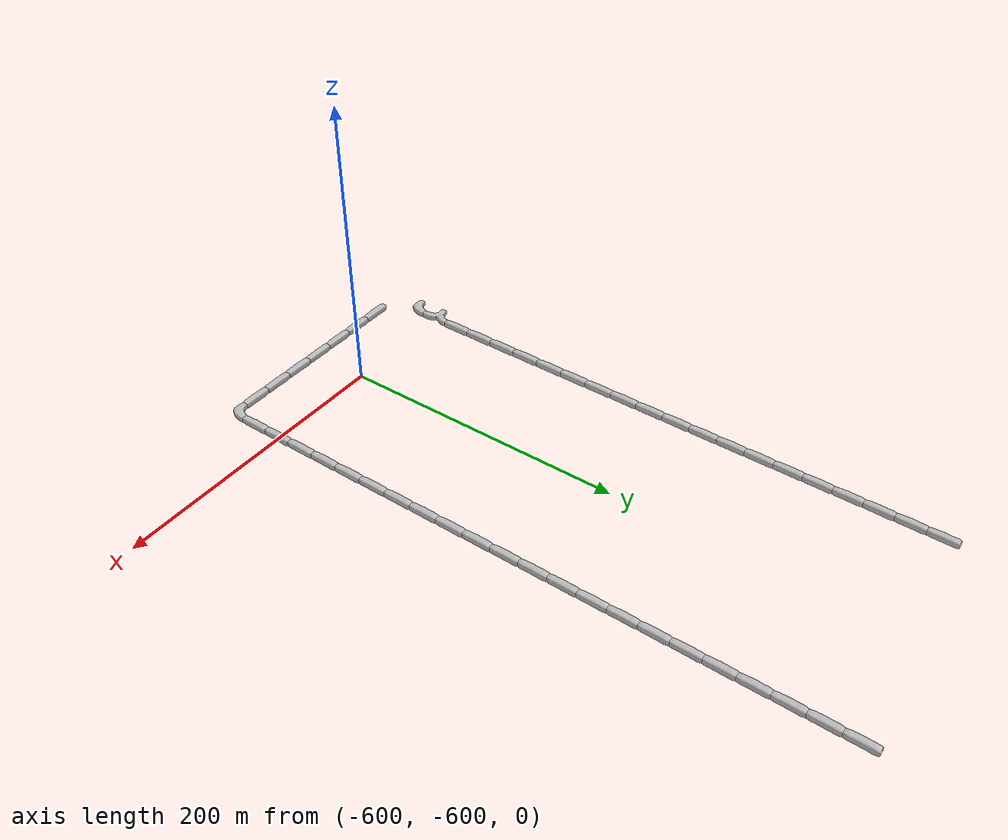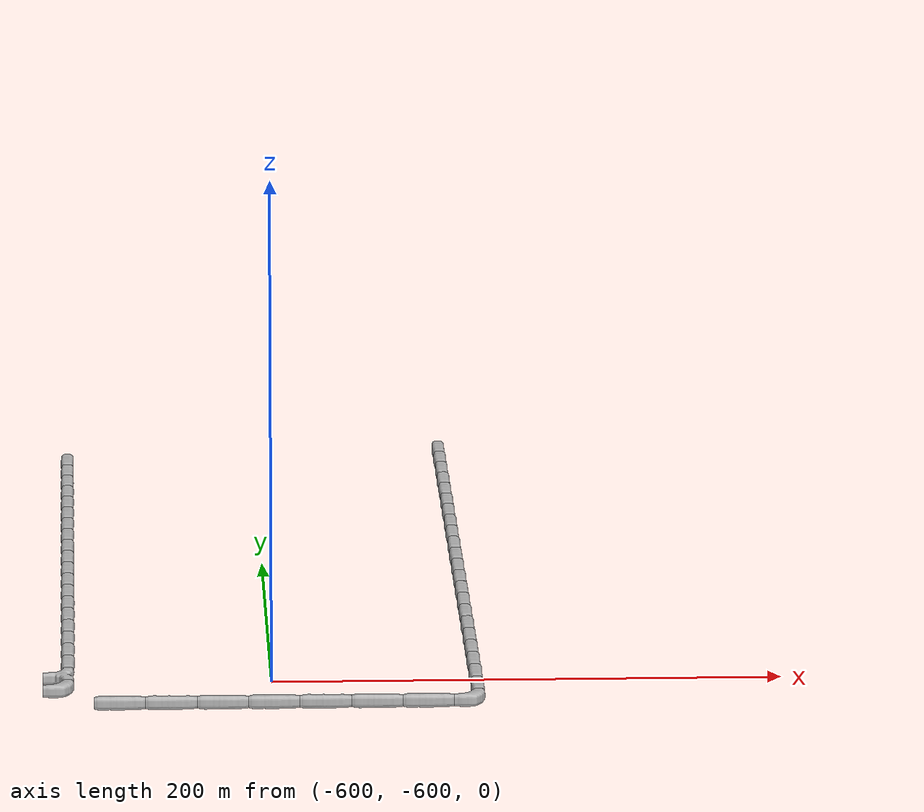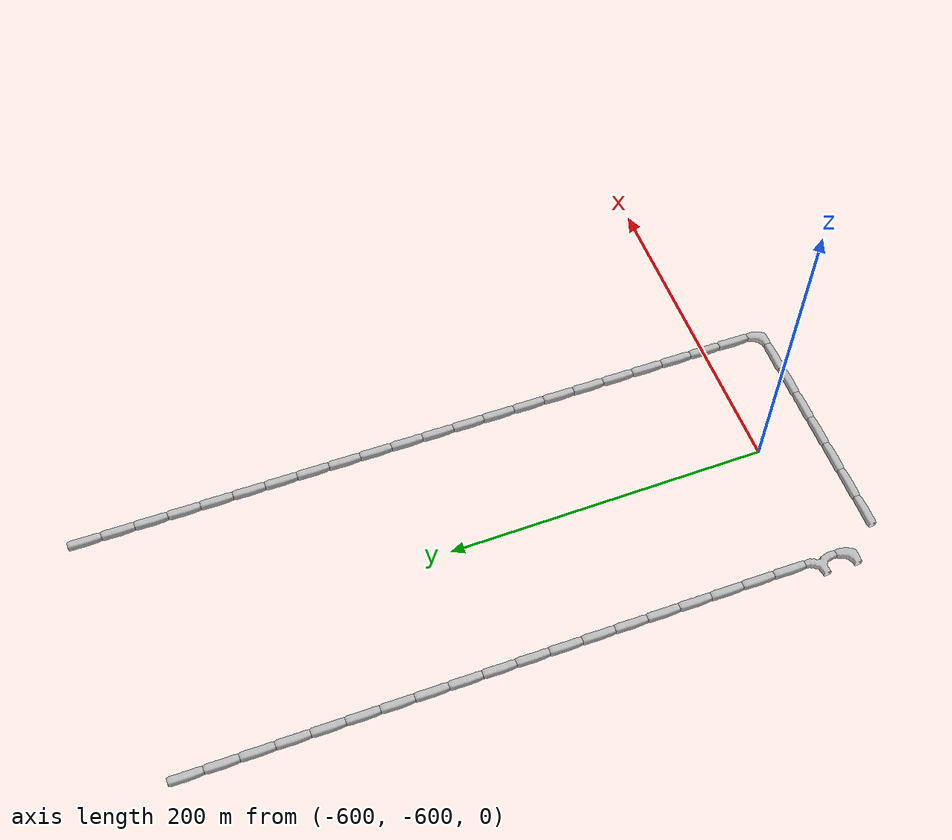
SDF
<sdf version="1.6">
 <world name="cave_8000">
  <include>
   <static>true</static>
   <name>cave_-26_-10</name>
   <pose>-520 -200 0 0 0 0.0</pose>
   <uri>model://cave_straight_20m</uri>
  </include>
  <include>
   <static>true</static>
   <name>cave_-26_-11</name>
   <pose>-520 -220 0 0 0 0.0</pose>
   <uri>model://cave_straight_20m</uri>
  </include>
  <include>
   <static>true</static>
   <name>cave_-26_-12</name>
   <pose>-520 -240 0 0 0 0.0</pose>
   <uri>model://cave_straight_20m</uri>
  </include>
  <include>
   <static>true</static>
   <name>cave_-26_-13</name>
   <pose>-520 -260 0 0 0 0.0</pose>
   <uri>model://cave_straight_20m</uri>
  </include>
  <include>
   <static>true</static>
   <name>cave_-26_-14</name>
   <pose>-520 -280 0 0 0 0.0</pose>
   <uri>model://cave_straight_20m</uri>
  </include>
  <include>
   <static>true</static>
   <name>cave_-26_-15</name>
   <pose>-520 -300 0 0 0 0.0</pose>
   <uri>model://cave_straight_20m</uri>
  </include>
  <include>
   <static>true</static>
   <name>cave_-26_-16</name>
   <pose>-520 -320 0 0 0 0.0</pose>
   <uri>model://cave_straight_20m</uri>
  </include>
  <include>
   <static>true</static>
   <name>cave_-26_-17</name>
   <pose>-520 -340 0 0 0 0.0</pose>
   <uri>model://cave_straight_20m</uri>
  </include>
  <include>
   <static>true</static>
   <name>cave_-26_-18</name>
   <pose>-520 -360 0 0 0 0.0</pose>
   <uri>model://cave_straight_20m</uri>
  </include>
  <include>
   <static>true</static>
   <name>cave_-26_-19</name>
   <pose>-520 -380 0 0 0 0.0</pose>
   <uri>model://cave_straight_20m</uri>
  </include>
  <include>
   <static>true</static>
   <name>cave_-26_-20</name>
   <pose>-520 -400 0 0 0 0.0</pose>
   <uri>model://cave_straight_20m</uri>
  </include>
  <include>
   <static>true</static>
   <name>cave_-26_-21</name>
   <pose>-520 -420 0 0 0 0.0</pose>
   <uri>model://cave_straight_20m</uri>
  </include>
  <include>
   <static>true</static>
   <name>cave_-26_-22</name>
   <pose>-520 -440 0 0 0 0.0</pose>
   <uri>model://cave_straight_20m</uri>
  </include>
  <include>
   <static>true</static>
   <name>cave_-26_-23</name>
   <pose>-520 -460 0 0 0 0.0</pose>
   <uri>model://cave_straight_20m</uri>
  </include>
  <include>
   <static>true</static>
   <name>cave_-26_-24</name>
   <pose>-520 -480 0 0 0 0.0</pose>
   <uri>model://cave_straight_20m</uri>
  </include>
  <include>
   <static>true</static>
   <name>cave_-26_-25</name>
   <pose>-520 -500 0 0 0 0.0</pose>
   <uri>model://cave_straight_20m</uri>
  </include>
  <include>
   <static>true</static>
   <name>cave_-26_-26</name>
   <pose>-520 -520 0 0 0 0.0</pose>
   <uri>model://cave_straight_20m</uri>
  </include>
  <include>
   <static>true</static>
   <name>cave_-26_-27</name>
   <pose>-520 -540 0 0 0 0.0</pose>
   <uri>model://cave_straight_20m</uri>
  </include>
  <include>
   <static>true</static>
   <name>cave_-26_-28</name>
   <pose>-520 -560 0 0 0 0.0</pose>
   <uri>model://cave_straight_20m</uri>
  </include>
  <include>
   <static>true</static>
   <name>cave_-26_-29</name>
   <pose>-520 -580 0 0 0 0.0</pose>
   <uri>model://cave_straight_20m</uri>
  </include>
  <include>
   <static>true</static>
   <name>cave_-26_-30</name>
   <pose>-520 -600 0 0 0 0.0</pose>
   <uri>model://cave_straight_20m</uri>
  </include>
  <include>
   <static>true</static>
   <name>cave_-26_-31</name>
   <pose>-520 -620 0 0 0 0.0</pose>
   <uri>model://cave_straight_20m</uri>
  </include>
  <include>
   <static>true</static>
   <name>cave_-26_-32</name>
   <pose>-520 -640 0 0 0 1.5707963267948966</pose>
   <uri>model://cave_L_20m</uri>
  </include>
  <include>
   <static>true</static>
   <name>cave_-27_-32</name>
   <pose>-540 -640 0 0 0 1.5707963267948966</pose>
   <uri>model://cave_straight_20m</uri>
  </include>
  <include>
   <static>true</static>
   <name>cave_-28_-32</name>
   <pose>-560 -640 0 0 0 1.5707963267948966</pose>
   <uri>model://cave_straight_20m</uri>
  </include>
  <include>
   <static>true</static>
   <name>cave_-29_-32</name>
   <pose>-580 -640 0 0 0 1.5707963267948966</pose>
   <uri>model://cave_straight_20m</uri>
  </include>
  <include>
   <static>true</static>
   <name>cave_-30_-32</name>
   <pose>-600 -640 0 0 0 1.5707963267948966</pose>
   <uri>model://cave_straight_20m</uri>
  </include>
  <include>
   <static>true</static>
   <name>cave_-31_-32</name>
   <pose>-620 -640 0 0 0 1.5707963267948966</pose>
   <uri>model://cave_straight_20m</uri>
  </include>
  <include>
   <static>true</static>
   <name>cave_-32_-32</name>
   <pose>-640 -640 0 0 0 1.5707963267948966</pose>
   <uri>model://cave_straight_20m</uri>
  </include>
  <include>
   <static>true</static>
   <name>cave_-33_-32</name>
   <pose>-660 -640 0 0 0 1.5707963267948966</pose>
   <uri>model://cave_straight_20m</uri>
  </include>
  <include>
   <static>true</static>
   <name>cave_-34_-31</name>
   <pose>-680 -620 0 0 0 1.5707963267948966</pose>
   <uri>model://cave_L_20m</uri>
  </include>
  <include>
   <static>true</static>
   <name>cave_-34_-30</name>
   <pose>-680 -600 0 0 0 1.5707963267948966</pose>
   <uri>model://cave_3way_20m</uri>
  </include>
  <include>
   <static>true</static>
   <name>cave_-34_-29</name>
   <pose>-680 -580 0 0 0 0.0</pose>
   <uri>model://cave_straight_20m</uri>
  </include>
  <include>
   <static>true</static>
   <name>cave_-34_-28</name>
   <pose>-680 -560 0 0 0 0.0</pose>
   <uri>model://cave_straight_20m</uri>
  </include>
  <include>
   <static>true</static>
   <name>cave_-34_-27</name>
   <pose>-680 -540 0 0 0 0.0</pose>
   <uri>model://cave_straight_20m</uri>
  </include>
  <include>
   <static>true</static>
   <name>cave_-34_-26</name>
   <pose>-680 -520 0 0 0 0.0</pose>
   <uri>model://cave_straight_20m</uri>
  </include>
  <include>
   <static>true</static>
   <name>cave_-34_-25</name>
   <pose>-680 -500 0 0 0 0.0</pose>
   <uri>model://cave_straight_20m</uri>
  </include>
  <include>
   <static>true</static>
   <name>cave_-34_-24</name>
   <pose>-680 -480 0 0 0 0.0</pose>
   <uri>model://cave_straight_20m</uri>
  </include>
  <include>
   <static>true</static>
   <name>cave_-34_-23</name>
   <pose>-680 -460 0 0 0 0.0</pose>
   <uri>model://cave_straight_20m</uri>
  </include>
  <include>
   <static>true</static>
   <name>cave_-34_-22</name>
   <pose>-680 -440 0 0 0 0.0</pose>
   <uri>model://cave_straight_20m</uri>
  </include>
  <include>
   <static>true</static>
   <name>cave_-34_-21</name>
   <pose>-680 -420 0 0 0 0.0</pose>
   <uri>model://cave_straight_20m</uri>
  </include>
  <include>
   <static>true</static>
   <name>cave_-34_-20</name>
   <pose>-680 -400 0 0 0 0.0</pose>
   <uri>model://cave_straight_20m</uri>
  </include>
  <include>
   <static>true</static>
   <name>cave_-34_-19</name>
   <pose>-680 -380 0 0 0 0.0</pose>
   <uri>model://cave_straight_20m</uri>
  </include>
  <include>
   <static>true</static>
   <name>cave_-34_-18</name>
   <pose>-680 -360 0 0 0 0.0</pose>
   <uri>model://cave_straight_20m</uri>
  </include>
  <include>
   <static>true</static>
   <name>cave_-34_-17</name>
   <pose>-680 -340 0 0 0 0.0</pose>
   <uri>model://cave_straight_20m</uri>
  </include>
  <include>
   <static>true</static>
   <name>cave_-34_-16</name>
   <pose>-680 -320 0 0 0 0.0</pose>
   <uri>model://cave_straight_20m</uri>
  </include>
  <include>
   <static>true</static>
   <name>cave_-34_-15</name>
   <pose>-680 -300 0 0 0 0.0</pose>
   <uri>model://cave_straight_20m</uri>
  </include>
  <include>
   <static>true</static>
   <name>cave_-34_-14</name>
   <pose>-680 -280 0 0 0 0.0</pose>
   <uri>model://cave_straight_20m</uri>
  </include>
  <include>
   <static>true</static>
   <name>cave_-34_-13</name>
   <pose>-680 -260 0 0 0 0.0</pose>
   <uri>model://cave_straight_20m</uri>
  </include>
  <include>
   <static>true</static>
   <name>cave_-34_-12</name>
   <pose>-680 -240 0 0 0 0.0</pose>
   <uri>model://cave_straight_20m</uri>
  </include>
  <include>
   <static>true</static>
   <name>cave_-34_-11</name>
   <pose>-680 -220 0 0 0 0.0</pose>
   <uri>model://cave_straight_20m</uri>
  </include>
 </world>
</sdf>
